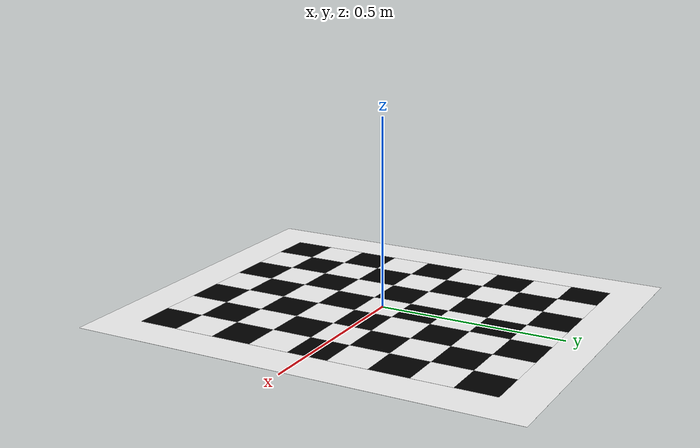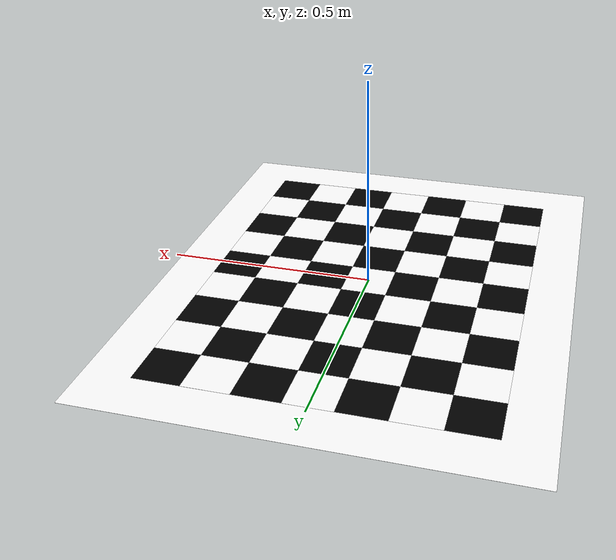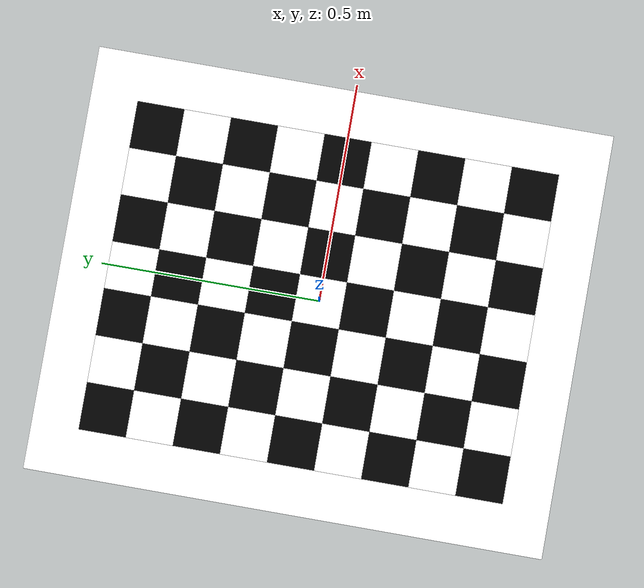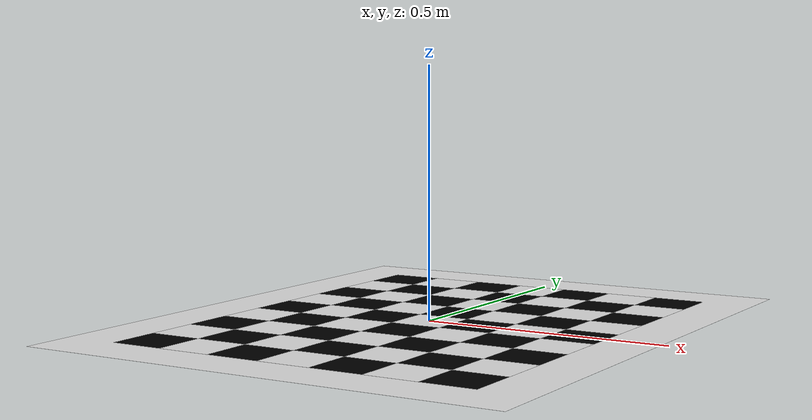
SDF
<?xml version="1.0"?>
<sdf version="1.4">
  <model name="checkerboard_7_9_0_108">
  <static>true</static>
  <link name="checkerboard_7_9_0_108_body">
      <visual name="checker_0_0">
        <pose>-0.324 -0.432 0 0 0 0</pose>
        <geometry>
          <box>
            <size>0.108 0.108 0.0002</size>
          </box>
        </geometry>
        <material>
          <ambient>0 0 0 1</ambient>
          <diffuse>0 0 0 1</diffuse>
          <specular>0 0 0 1</specular>
          <emissive>0 0 0 1</emissive>
        </material>
      </visual>
      <visual name="checker_0_1">
        <pose>-0.324 -0.32399999999999995 0 0 0 0</pose>
        <geometry>
          <box>
            <size>0.108 0.108 0.0002</size>
          </box>
        </geometry>
        <material>
          <ambient>1 1 1 1</ambient>
          <diffuse>1 1 1 1</diffuse>
          <specular>1 1 1 1</specular>
          <emissive>1 1 1 1</emissive>
        </material>
      </visual>
      <visual name="checker_0_2">
        <pose>-0.324 -0.21599999999999997 0 0 0 0</pose>
        <geometry>
          <box>
            <size>0.108 0.108 0.0002</size>
          </box>
        </geometry>
        <material>
          <ambient>0 0 0 1</ambient>
          <diffuse>0 0 0 1</diffuse>
          <specular>0 0 0 1</specular>
          <emissive>0 0 0 1</emissive>
        </material>
      </visual>
      <visual name="checker_0_3">
        <pose>-0.324 -0.10799999999999998 0 0 0 0</pose>
        <geometry>
          <box>
            <size>0.108 0.108 0.0002</size>
          </box>
        </geometry>
        <material>
          <ambient>1 1 1 1</ambient>
          <diffuse>1 1 1 1</diffuse>
          <specular>1 1 1 1</specular>
          <emissive>1 1 1 1</emissive>
        </material>
      </visual>
      <visual name="checker_0_4">
        <pose>-0.324 0.0 0 0 0 0</pose>
        <geometry>
          <box>
            <size>0.108 0.108 0.0002</size>
          </box>
        </geometry>
        <material>
          <ambient>0 0 0 1</ambient>
          <diffuse>0 0 0 1</diffuse>
          <specular>0 0 0 1</specular>
          <emissive>0 0 0 1</emissive>
        </material>
      </visual>
      <visual name="checker_0_5">
        <pose>-0.324 0.1080000000000001 0 0 0 0</pose>
        <geometry>
          <box>
            <size>0.108 0.108 0.0002</size>
          </box>
        </geometry>
        <material>
          <ambient>1 1 1 1</ambient>
          <diffuse>1 1 1 1</diffuse>
          <specular>1 1 1 1</specular>
          <emissive>1 1 1 1</emissive>
        </material>
      </visual>
      <visual name="checker_0_6">
        <pose>-0.324 0.21600000000000008 0 0 0 0</pose>
        <geometry>
          <box>
            <size>0.108 0.108 0.0002</size>
          </box>
        </geometry>
        <material>
          <ambient>0 0 0 1</ambient>
          <diffuse>0 0 0 1</diffuse>
          <specular>0 0 0 1</specular>
          <emissive>0 0 0 1</emissive>
        </material>
      </visual>
      <visual name="checker_0_7">
        <pose>-0.324 0.32400000000000007 0 0 0 0</pose>
        <geometry>
          <box>
            <size>0.108 0.108 0.0002</size>
          </box>
        </geometry>
        <material>
          <ambient>1 1 1 1</ambient>
          <diffuse>1 1 1 1</diffuse>
          <specular>1 1 1 1</specular>
          <emissive>1 1 1 1</emissive>
        </material>
      </visual>
      <visual name="checker_0_8">
        <pose>-0.324 0.43200000000000005 0 0 0 0</pose>
        <geometry>
          <box>
            <size>0.108 0.108 0.0002</size>
          </box>
        </geometry>
        <material>
          <ambient>0 0 0 1</ambient>
          <diffuse>0 0 0 1</diffuse>
          <specular>0 0 0 1</specular>
          <emissive>0 0 0 1</emissive>
        </material>
      </visual>
      <visual name="checker_1_0">
        <pose>-0.216 -0.432 0 0 0 0</pose>
        <geometry>
          <box>
            <size>0.108 0.108 0.0002</size>
          </box>
        </geometry>
        <material>
          <ambient>1 1 1 1</ambient>
          <diffuse>1 1 1 1</diffuse>
          <specular>1 1 1 1</specular>
          <emissive>1 1 1 1</emissive>
        </material>
      </visual>
      <visual name="checker_1_1">
        <pose>-0.216 -0.32399999999999995 0 0 0 0</pose>
        <geometry>
          <box>
            <size>0.108 0.108 0.0002</size>
          </box>
        </geometry>
        <material>
          <ambient>0 0 0 1</ambient>
          <diffuse>0 0 0 1</diffuse>
          <specular>0 0 0 1</specular>
          <emissive>0 0 0 1</emissive>
        </material>
      </visual>
      <visual name="checker_1_2">
        <pose>-0.216 -0.21599999999999997 0 0 0 0</pose>
        <geometry>
          <box>
            <size>0.108 0.108 0.0002</size>
          </box>
        </geometry>
        <material>
          <ambient>1 1 1 1</ambient>
          <diffuse>1 1 1 1</diffuse>
          <specular>1 1 1 1</specular>
          <emissive>1 1 1 1</emissive>
        </material>
      </visual>
      <visual name="checker_1_3">
        <pose>-0.216 -0.10799999999999998 0 0 0 0</pose>
        <geometry>
          <box>
            <size>0.108 0.108 0.0002</size>
          </box>
        </geometry>
        <material>
          <ambient>0 0 0 1</ambient>
          <diffuse>0 0 0 1</diffuse>
          <specular>0 0 0 1</specular>
          <emissive>0 0 0 1</emissive>
        </material>
      </visual>
      <visual name="checker_1_4">
        <pose>-0.216 0.0 0 0 0 0</pose>
        <geometry>
          <box>
            <size>0.108 0.108 0.0002</size>
          </box>
        </geometry>
        <material>
          <ambient>1 1 1 1</ambient>
          <diffuse>1 1 1 1</diffuse>
          <specular>1 1 1 1</specular>
          <emissive>1 1 1 1</emissive>
        </material>
      </visual>
      <visual name="checker_1_5">
        <pose>-0.216 0.1080000000000001 0 0 0 0</pose>
        <geometry>
          <box>
            <size>0.108 0.108 0.0002</size>
          </box>
        </geometry>
        <material>
          <ambient>0 0 0 1</ambient>
          <diffuse>0 0 0 1</diffuse>
          <specular>0 0 0 1</specular>
          <emissive>0 0 0 1</emissive>
        </material>
      </visual>
      <visual name="checker_1_6">
        <pose>-0.216 0.21600000000000008 0 0 0 0</pose>
        <geometry>
          <box>
            <size>0.108 0.108 0.0002</size>
          </box>
        </geometry>
        <material>
          <ambient>1 1 1 1</ambient>
          <diffuse>1 1 1 1</diffuse>
          <specular>1 1 1 1</specular>
          <emissive>1 1 1 1</emissive>
        </material>
      </visual>
      <visual name="checker_1_7">
        <pose>-0.216 0.32400000000000007 0 0 0 0</pose>
        <geometry>
          <box>
            <size>0.108 0.108 0.0002</size>
          </box>
        </geometry>
        <material>
          <ambient>0 0 0 1</ambient>
          <diffuse>0 0 0 1</diffuse>
          <specular>0 0 0 1</specular>
          <emissive>0 0 0 1</emissive>
        </material>
      </visual>
      <visual name="checker_1_8">
        <pose>-0.216 0.43200000000000005 0 0 0 0</pose>
        <geometry>
          <box>
            <size>0.108 0.108 0.0002</size>
          </box>
        </geometry>
        <material>
          <ambient>1 1 1 1</ambient>
          <diffuse>1 1 1 1</diffuse>
          <specular>1 1 1 1</specular>
          <emissive>1 1 1 1</emissive>
        </material>
      </visual>
      <visual name="checker_2_0">
        <pose>-0.10799999999999998 -0.432 0 0 0 0</pose>
        <geometry>
          <box>
            <size>0.108 0.108 0.0002</size>
          </box>
        </geometry>
        <material>
          <ambient>0 0 0 1</ambient>
          <diffuse>0 0 0 1</diffuse>
          <specular>0 0 0 1</specular>
          <emissive>0 0 0 1</emissive>
        </material>
      </visual>
      <visual name="checker_2_1">
        <pose>-0.10799999999999998 -0.32399999999999995 0 0 0 0</pose>
        <geometry>
          <box>
            <size>0.108 0.108 0.0002</size>
          </box>
        </geometry>
        <material>
          <ambient>1 1 1 1</ambient>
          <diffuse>1 1 1 1</diffuse>
          <specular>1 1 1 1</specular>
          <emissive>1 1 1 1</emissive>
        </material>
      </visual>
      <visual name="checker_2_2">
        <pose>-0.10799999999999998 -0.21599999999999997 0 0 0 0</pose>
        <geometry>
          <box>
            <size>0.108 0.108 0.0002</size>
          </box>
        </geometry>
        <material>
          <ambient>0 0 0 1</ambient>
          <diffuse>0 0 0 1</diffuse>
          <specular>0 0 0 1</specular>
          <emissive>0 0 0 1</emissive>
        </material>
      </visual>
      <visual name="checker_2_3">
        <pose>-0.10799999999999998 -0.10799999999999998 0 0 0 0</pose>
        <geometry>
          <box>
            <size>0.108 0.108 0.0002</size>
          </box>
        </geometry>
        <material>
          <ambient>1 1 1 1</ambient>
          <diffuse>1 1 1 1</diffuse>
          <specular>1 1 1 1</specular>
          <emissive>1 1 1 1</emissive>
        </material>
      </visual>
      <visual name="checker_2_4">
        <pose>-0.10799999999999998 0.0 0 0 0 0</pose>
        <geometry>
          <box>
            <size>0.108 0.108 0.0002</size>
          </box>
        </geometry>
        <material>
          <ambient>0 0 0 1</ambient>
          <diffuse>0 0 0 1</diffuse>
          <specular>0 0 0 1</specular>
          <emissive>0 0 0 1</emissive>
        </material>
      </visual>
      <visual name="checker_2_5">
        <pose>-0.10799999999999998 0.1080000000000001 0 0 0 0</pose>
        <geometry>
          <box>
            <size>0.108 0.108 0.0002</size>
          </box>
        </geometry>
        <material>
          <ambient>1 1 1 1</ambient>
          <diffuse>1 1 1 1</diffuse>
          <specular>1 1 1 1</specular>
          <emissive>1 1 1 1</emissive>
        </material>
      </visual>
      <visual name="checker_2_6">
        <pose>-0.10799999999999998 0.21600000000000008 0 0 0 0</pose>
        <geometry>
          <box>
            <size>0.108 0.108 0.0002</size>
          </box>
        </geometry>
        <material>
          <ambient>0 0 0 1</ambient>
          <diffuse>0 0 0 1</diffuse>
          <specular>0 0 0 1</specular>
          <emissive>0 0 0 1</emissive>
        </material>
      </visual>
      <visual name="checker_2_7">
        <pose>-0.10799999999999998 0.32400000000000007 0 0 0 0</pose>
        <geometry>
          <box>
            <size>0.108 0.108 0.0002</size>
          </box>
        </geometry>
        <material>
          <ambient>1 1 1 1</ambient>
          <diffuse>1 1 1 1</diffuse>
          <specular>1 1 1 1</specular>
          <emissive>1 1 1 1</emissive>
        </material>
      </visual>
      <visual name="checker_2_8">
        <pose>-0.10799999999999998 0.43200000000000005 0 0 0 0</pose>
        <geometry>
          <box>
            <size>0.108 0.108 0.0002</size>
          </box>
        </geometry>
        <material>
          <ambient>0 0 0 1</ambient>
          <diffuse>0 0 0 1</diffuse>
          <specular>0 0 0 1</specular>
          <emissive>0 0 0 1</emissive>
        </material>
      </visual>
      <visual name="checker_3_0">
        <pose>0.0 -0.432 0 0 0 0</pose>
        <geometry>
          <box>
            <size>0.108 0.108 0.0002</size>
          </box>
        </geometry>
        <material>
          <ambient>1 1 1 1</ambient>
          <diffuse>1 1 1 1</diffuse>
          <specular>1 1 1 1</specular>
          <emissive>1 1 1 1</emissive>
        </material>
      </visual>
      <visual name="checker_3_1">
        <pose>0.0 -0.32399999999999995 0 0 0 0</pose>
        <geometry>
          <box>
            <size>0.108 0.108 0.0002</size>
          </box>
        </geometry>
        <material>
          <ambient>0 0 0 1</ambient>
          <diffuse>0 0 0 1</diffuse>
          <specular>0 0 0 1</specular>
          <emissive>0 0 0 1</emissive>
        </material>
      </visual>
      <visual name="checker_3_2">
        <pose>0.0 -0.21599999999999997 0 0 0 0</pose>
        <geometry>
          <box>
            <size>0.108 0.108 0.0002</size>
          </box>
        </geometry>
        <material>
          <ambient>1 1 1 1</ambient>
          <diffuse>1 1 1 1</diffuse>
          <specular>1 1 1 1</specular>
          <emissive>1 1 1 1</emissive>
        </material>
      </visual>
      <visual name="checker_3_3">
        <pose>0.0 -0.10799999999999998 0 0 0 0</pose>
        <geometry>
          <box>
            <size>0.108 0.108 0.0002</size>
          </box>
        </geometry>
        <material>
          <ambient>0 0 0 1</ambient>
          <diffuse>0 0 0 1</diffuse>
          <specular>0 0 0 1</specular>
          <emissive>0 0 0 1</emissive>
        </material>
      </visual>
      <visual name="checker_3_4">
        <pose>0.0 0.0 0 0 0 0</pose>
        <geometry>
          <box>
            <size>0.108 0.108 0.0002</size>
          </box>
        </geometry>
        <material>
          <ambient>1 1 1 1</ambient>
          <diffuse>1 1 1 1</diffuse>
          <specular>1 1 1 1</specular>
          <emissive>1 1 1 1</emissive>
        </material>
      </visual>
      <visual name="checker_3_5">
        <pose>0.0 0.1080000000000001 0 0 0 0</pose>
        <geometry>
          <box>
            <size>0.108 0.108 0.0002</size>
          </box>
        </geometry>
        <material>
          <ambient>0 0 0 1</ambient>
          <diffuse>0 0 0 1</diffuse>
          <specular>0 0 0 1</specular>
          <emissive>0 0 0 1</emissive>
        </material>
      </visual>
      <visual name="checker_3_6">
        <pose>0.0 0.21600000000000008 0 0 0 0</pose>
        <geometry>
          <box>
            <size>0.108 0.108 0.0002</size>
          </box>
        </geometry>
        <material>
          <ambient>1 1 1 1</ambient>
          <diffuse>1 1 1 1</diffuse>
          <specular>1 1 1 1</specular>
          <emissive>1 1 1 1</emissive>
        </material>
      </visual>
      <visual name="checker_3_7">
        <pose>0.0 0.32400000000000007 0 0 0 0</pose>
        <geometry>
          <box>
            <size>0.108 0.108 0.0002</size>
          </box>
        </geometry>
        <material>
          <ambient>0 0 0 1</ambient>
          <diffuse>0 0 0 1</diffuse>
          <specular>0 0 0 1</specular>
          <emissive>0 0 0 1</emissive>
        </material>
      </visual>
      <visual name="checker_3_8">
        <pose>0.0 0.43200000000000005 0 0 0 0</pose>
        <geometry>
          <box>
            <size>0.108 0.108 0.0002</size>
          </box>
        </geometry>
        <material>
          <ambient>1 1 1 1</ambient>
          <diffuse>1 1 1 1</diffuse>
          <specular>1 1 1 1</specular>
          <emissive>1 1 1 1</emissive>
        </material>
      </visual>
      <visual name="checker_4_0">
        <pose>0.10799999999999998 -0.432 0 0 0 0</pose>
        <geometry>
          <box>
            <size>0.108 0.108 0.0002</size>
          </box>
        </geometry>
        <material>
          <ambient>0 0 0 1</ambient>
          <diffuse>0 0 0 1</diffuse>
          <specular>0 0 0 1</specular>
          <emissive>0 0 0 1</emissive>
        </material>
      </visual>
      <visual name="checker_4_1">
        <pose>0.10799999999999998 -0.32399999999999995 0 0 0 0</pose>
        <geometry>
          <box>
            <size>0.108 0.108 0.0002</size>
          </box>
        </geometry>
        <material>
          <ambient>1 1 1 1</ambient>
          <diffuse>1 1 1 1</diffuse>
          <specular>1 1 1 1</specular>
          <emissive>1 1 1 1</emissive>
        </material>
      </visual>
      <visual name="checker_4_2">
        <pose>0.10799999999999998 -0.21599999999999997 0 0 0 0</pose>
        <geometry>
          <box>
            <size>0.108 0.108 0.0002</size>
          </box>
        </geometry>
        <material>
          <ambient>0 0 0 1</ambient>
          <diffuse>0 0 0 1</diffuse>
          <specular>0 0 0 1</specular>
          <emissive>0 0 0 1</emissive>
        </material>
      </visual>
      <visual name="checker_4_3">
        <pose>0.10799999999999998 -0.10799999999999998 0 0 0 0</pose>
        <geometry>
          <box>
            <size>0.108 0.108 0.0002</size>
          </box>
        </geometry>
        <material>
          <ambient>1 1 1 1</ambient>
          <diffuse>1 1 1 1</diffuse>
          <specular>1 1 1 1</specular>
          <emissive>1 1 1 1</emissive>
        </material>
      </visual>
      <visual name="checker_4_4">
        <pose>0.10799999999999998 0.0 0 0 0 0</pose>
        <geometry>
          <box>
            <size>0.108 0.108 0.0002</size>
          </box>
        </geometry>
        <material>
          <ambient>0 0 0 1</ambient>
          <diffuse>0 0 0 1</diffuse>
          <specular>0 0 0 1</specular>
          <emissive>0 0 0 1</emissive>
        </material>
      </visual>
      <visual name="checker_4_5">
        <pose>0.10799999999999998 0.1080000000000001 0 0 0 0</pose>
        <geometry>
          <box>
            <size>0.108 0.108 0.0002</size>
          </box>
        </geometry>
        <material>
          <ambient>1 1 1 1</ambient>
          <diffuse>1 1 1 1</diffuse>
          <specular>1 1 1 1</specular>
          <emissive>1 1 1 1</emissive>
        </material>
      </visual>
      <visual name="checker_4_6">
        <pose>0.10799999999999998 0.21600000000000008 0 0 0 0</pose>
        <geometry>
          <box>
            <size>0.108 0.108 0.0002</size>
          </box>
        </geometry>
        <material>
          <ambient>0 0 0 1</ambient>
          <diffuse>0 0 0 1</diffuse>
          <specular>0 0 0 1</specular>
          <emissive>0 0 0 1</emissive>
        </material>
      </visual>
      <visual name="checker_4_7">
        <pose>0.10799999999999998 0.32400000000000007 0 0 0 0</pose>
        <geometry>
          <box>
            <size>0.108 0.108 0.0002</size>
          </box>
        </geometry>
        <material>
          <ambient>1 1 1 1</ambient>
          <diffuse>1 1 1 1</diffuse>
          <specular>1 1 1 1</specular>
          <emissive>1 1 1 1</emissive>
        </material>
      </visual>
      <visual name="checker_4_8">
        <pose>0.10799999999999998 0.43200000000000005 0 0 0 0</pose>
        <geometry>
          <box>
            <size>0.108 0.108 0.0002</size>
          </box>
        </geometry>
        <material>
          <ambient>0 0 0 1</ambient>
          <diffuse>0 0 0 1</diffuse>
          <specular>0 0 0 1</specular>
          <emissive>0 0 0 1</emissive>
        </material>
      </visual>
      <visual name="checker_5_0">
        <pose>0.21600000000000008 -0.432 0 0 0 0</pose>
        <geometry>
          <box>
            <size>0.108 0.108 0.0002</size>
          </box>
        </geometry>
        <material>
          <ambient>1 1 1 1</ambient>
          <diffuse>1 1 1 1</diffuse>
          <specular>1 1 1 1</specular>
          <emissive>1 1 1 1</emissive>
        </material>
      </visual>
      <visual name="checker_5_1">
        <pose>0.21600000000000008 -0.32399999999999995 0 0 0 0</pose>
        <geometry>
          <box>
            <size>0.108 0.108 0.0002</size>
          </box>
        </geometry>
        <material>
          <ambient>0 0 0 1</ambient>
          <diffuse>0 0 0 1</diffuse>
          <specular>0 0 0 1</specular>
          <emissive>0 0 0 1</emissive>
        </material>
      </visual>
      <visual name="checker_5_2">
        <pose>0.21600000000000008 -0.21599999999999997 0 0 0 0</pose>
        <geometry>
          <box>
            <size>0.108 0.108 0.0002</size>
          </box>
        </geometry>
        <material>
          <ambient>1 1 1 1</ambient>
          <diffuse>1 1 1 1</diffuse>
          <specular>1 1 1 1</specular>
          <emissive>1 1 1 1</emissive>
        </material>
      </visual>
      <visual name="checker_5_3">
        <pose>0.21600000000000008 -0.10799999999999998 0 0 0 0</pose>
        <geometry>
          <box>
            <size>0.108 0.108 0.0002</size>
          </box>
        </geometry>
        <material>
          <ambient>0 0 0 1</ambient>
          <diffuse>0 0 0 1</diffuse>
          <specular>0 0 0 1</specular>
          <emissive>0 0 0 1</emissive>
        </material>
      </visual>
      <visual name="checker_5_4">
        <pose>0.21600000000000008 0.0 0 0 0 0</pose>
        <geometry>
          <box>
            <size>0.108 0.108 0.0002</size>
          </box>
        </geometry>
        <material>
          <ambient>1 1 1 1</ambient>
          <diffuse>1 1 1 1</diffuse>
          <specular>1 1 1 1</specular>
          <emissive>1 1 1 1</emissive>
        </material>
      </visual>
      <visual name="checker_5_5">
        <pose>0.21600000000000008 0.1080000000000001 0 0 0 0</pose>
        <geometry>
          <box>
            <size>0.108 0.108 0.0002</size>
          </box>
        </geometry>
        <material>
          <ambient>0 0 0 1</ambient>
          <diffuse>0 0 0 1</diffuse>
          <specular>0 0 0 1</specular>
          <emissive>0 0 0 1</emissive>
        </material>
      </visual>
      <visual name="checker_5_6">
        <pose>0.21600000000000008 0.21600000000000008 0 0 0 0</pose>
        <geometry>
          <box>
            <size>0.108 0.108 0.0002</size>
          </box>
        </geometry>
        <material>
          <ambient>1 1 1 1</ambient>
          <diffuse>1 1 1 1</diffuse>
          <specular>1 1 1 1</specular>
          <emissive>1 1 1 1</emissive>
        </material>
      </visual>
      <visual name="checker_5_7">
        <pose>0.21600000000000008 0.32400000000000007 0 0 0 0</pose>
        <geometry>
          <box>
            <size>0.108 0.108 0.0002</size>
          </box>
        </geometry>
        <material>
          <ambient>0 0 0 1</ambient>
          <diffuse>0 0 0 1</diffuse>
          <specular>0 0 0 1</specular>
          <emissive>0 0 0 1</emissive>
        </material>
      </visual>
      <visual name="checker_5_8">
        <pose>0.21600000000000008 0.43200000000000005 0 0 0 0</pose>
        <geometry>
          <box>
            <size>0.108 0.108 0.0002</size>
          </box>
        </geometry>
        <material>
          <ambient>1 1 1 1</ambient>
          <diffuse>1 1 1 1</diffuse>
          <specular>1 1 1 1</specular>
          <emissive>1 1 1 1</emissive>
        </material>
      </visual>
      <visual name="checker_6_0">
        <pose>0.32400000000000007 -0.432 0 0 0 0</pose>
        <geometry>
          <box>
            <size>0.108 0.108 0.0002</size>
          </box>
        </geometry>
        <material>
          <ambient>0 0 0 1</ambient>
          <diffuse>0 0 0 1</diffuse>
          <specular>0 0 0 1</specular>
          <emissive>0 0 0 1</emissive>
        </material>
      </visual>
      <visual name="checker_6_1">
        <pose>0.32400000000000007 -0.32399999999999995 0 0 0 0</pose>
        <geometry>
          <box>
            <size>0.108 0.108 0.0002</size>
          </box>
        </geometry>
        <material>
          <ambient>1 1 1 1</ambient>
          <diffuse>1 1 1 1</diffuse>
          <specular>1 1 1 1</specular>
          <emissive>1 1 1 1</emissive>
        </material>
      </visual>
      <visual name="checker_6_2">
        <pose>0.32400000000000007 -0.21599999999999997 0 0 0 0</pose>
        <geometry>
          <box>
            <size>0.108 0.108 0.0002</size>
          </box>
        </geometry>
        <material>
          <ambient>0 0 0 1</ambient>
          <diffuse>0 0 0 1</diffuse>
          <specular>0 0 0 1</specular>
          <emissive>0 0 0 1</emissive>
        </material>
      </visual>
      <visual name="checker_6_3">
        <pose>0.32400000000000007 -0.10799999999999998 0 0 0 0</pose>
        <geometry>
          <box>
            <size>0.108 0.108 0.0002</size>
          </box>
        </geometry>
        <material>
          <ambient>1 1 1 1</ambient>
          <diffuse>1 1 1 1</diffuse>
          <specular>1 1 1 1</specular>
          <emissive>1 1 1 1</emissive>
        </material>
      </visual>
      <visual name="checker_6_4">
        <pose>0.32400000000000007 0.0 0 0 0 0</pose>
        <geometry>
          <box>
            <size>0.108 0.108 0.0002</size>
          </box>
        </geometry>
        <material>
          <ambient>0 0 0 1</ambient>
          <diffuse>0 0 0 1</diffuse>
          <specular>0 0 0 1</specular>
          <emissive>0 0 0 1</emissive>
        </material>
      </visual>
      <visual name="checker_6_5">
        <pose>0.32400000000000007 0.1080000000000001 0 0 0 0</pose>
        <geometry>
          <box>
            <size>0.108 0.108 0.0002</size>
          </box>
        </geometry>
        <material>
          <ambient>1 1 1 1</ambient>
          <diffuse>1 1 1 1</diffuse>
          <specular>1 1 1 1</specular>
          <emissive>1 1 1 1</emissive>
        </material>
      </visual>
      <visual name="checker_6_6">
        <pose>0.32400000000000007 0.21600000000000008 0 0 0 0</pose>
        <geometry>
          <box>
            <size>0.108 0.108 0.0002</size>
          </box>
        </geometry>
        <material>
          <ambient>0 0 0 1</ambient>
          <diffuse>0 0 0 1</diffuse>
          <specular>0 0 0 1</specular>
          <emissive>0 0 0 1</emissive>
        </material>
      </visual>
      <visual name="checker_6_7">
        <pose>0.32400000000000007 0.32400000000000007 0 0 0 0</pose>
        <geometry>
          <box>
            <size>0.108 0.108 0.0002</size>
          </box>
        </geometry>
        <material>
          <ambient>1 1 1 1</ambient>
          <diffuse>1 1 1 1</diffuse>
          <specular>1 1 1 1</specular>
          <emissive>1 1 1 1</emissive>
        </material>
      </visual>
      <visual name="checker_6_8">
        <pose>0.32400000000000007 0.43200000000000005 0 0 0 0</pose>
        <geometry>
          <box>
            <size>0.108 0.108 0.0002</size>
          </box>
        </geometry>
        <material>
          <ambient>0 0 0 1</ambient>
          <diffuse>0 0 0 1</diffuse>
          <specular>0 0 0 1</specular>
          <emissive>0 0 0 1</emissive>
        </material>
      </visual>
      <visual name="checker_backdrop">
        <pose>0 0 0 0 0 0</pose>
        <geometry>
          <box>
            <size>0.972 1.188 0.0001</size>
          </box>
        </geometry>
        <material>
          <ambient>1 1 1 1</ambient>
          <diffuse>1 1 1 1</diffuse>
          <specular>1 1 1 1</specular>
          <emissive>1 1 1 1</emissive>
        </material>
      </visual>
    </link>
  </model>
</sdf>
